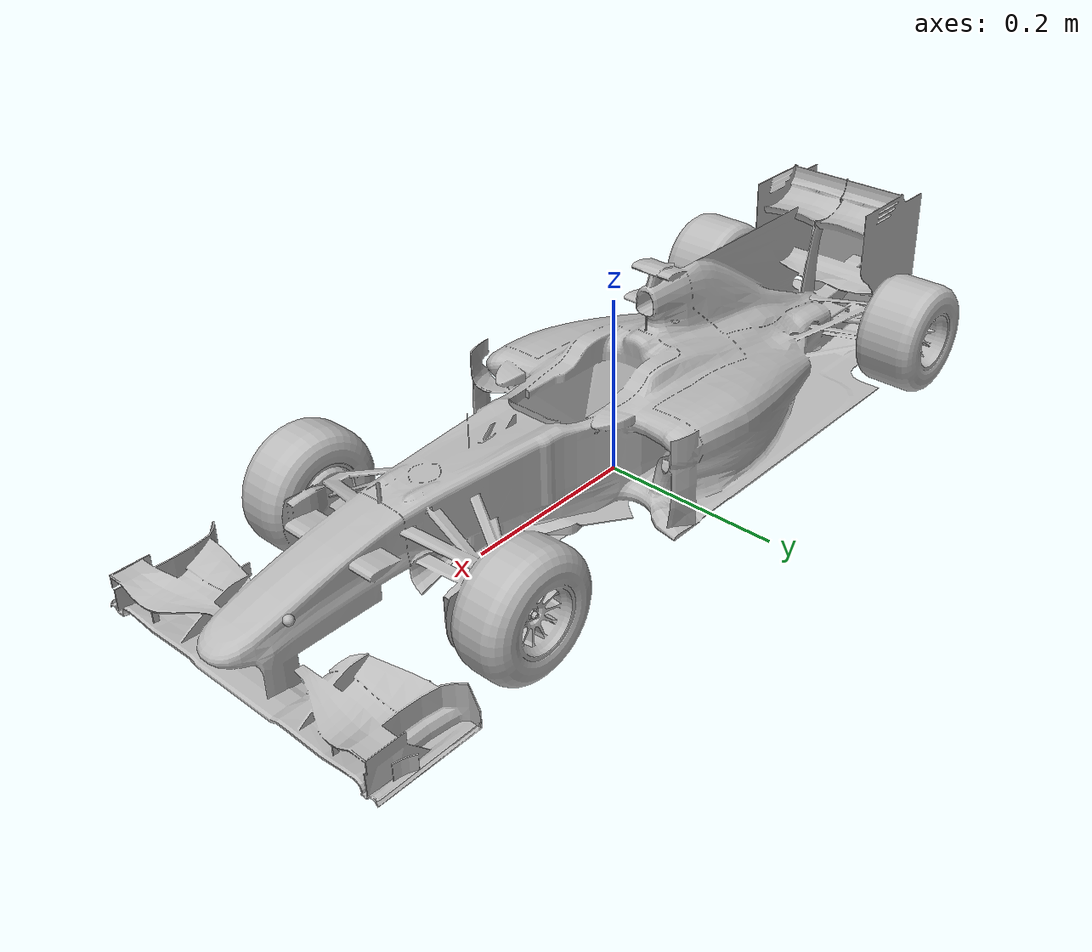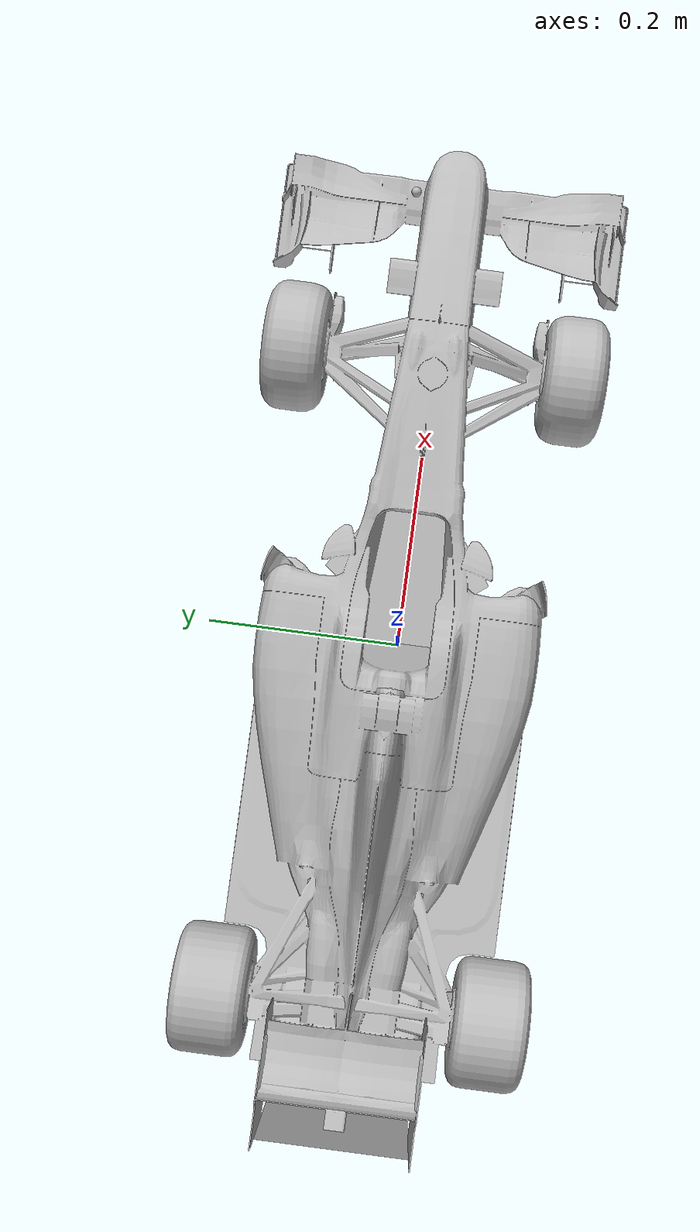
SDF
<?xml version='1.0'?>
<sdf version="1.5">
<model name="f1_renault">
  <pose>0 0 0.0 0 0 0</pose>
  <static>false</static>
    <link name="f1">
    	<pose>0 0 0 0 0 0</pose>
	<inertial>
        <mass>10</mass>
        <inertia>
          <ixx>1</ixx>
          <ixy>0.0</ixy>
          <iyy>1</iyy>
          <ixz>0.0</ixz>
          <iyz>0.0</iyz>
          <izz>1.0</izz>
      </inertia>
    </inertial>
    <collision name="collision">
        <geometry>
            <mesh>
                 <uri>model://f1_renault/Renault/Car.obj</uri>
                 <scale>0.2 0.2 0.2</scale>
            </mesh>
        </geometry>
    </collision>
    <visual name="visual">
        <geometry>
          <mesh>
            <uri>model://f1_renault/Renault/Car.obj</uri>
            <scale>0.2 0.2 0.2</scale>
        </mesh>
      </geometry>
    </visual>
    <visual name='left_cam'>
      <pose>0.45000 0.040000 0.1000000 0.000000 -0.000000 0.0000000</pose>
      <geometry>
        <sphere>
          <radius>.005</radius>
        </sphere>
      </geometry>
    </visual>
    <sensor name='cam_f1_left' type='camera'>
      <pose>0.45000 0.040000 0.1000000 0.000000 -0.000000 0.0000000</pose>
      <update_rate>20.000000</update_rate>
      <camera name='cleft'>
        <horizontal_fov>1.570000</horizontal_fov>
        <image>
          <width>640</width>
          <height>480</height>
          <format>R8G8B8</format>
        </image>
        <clip>
          <near>0.100000</near>
          <far>15.000000</far>
        </clip>
      </camera>
      <plugin name="camera_controller_left" filename="libgazebo_ros_camera.so">
        <alwaysOn>true</alwaysOn>
        <updateRate>0.0</updateRate>
        <cameraName>F1ROS/cameraL</cameraName>
        <imageTopicName>image_raw</imageTopicName>
        <cameraInfoTopicName>camera_info</cameraInfoTopicName>
        <frameName>camera_top_body_left</frameName>
        <hackBaseline>0.07</hackBaseline>
        <distortionK1>0.0</distortionK1>
        <distortionK2>0.0</distortionK2>
        <distortionK3>0.0</distortionK3>
        <distortionT1>0.0</distortionT1>
        <distortionT2>0.0</distortionT2>
      </plugin>
    </sensor>

  </link>

  <plugin name="object_controller" filename="libgazebo_ros_planar_move.so">
      <commandTopic>F1ROS/cmd_vel</commandTopic>
      <odometryTopic>F1ROS/odom</odometryTopic>
      <odometryFrame>odom</odometryFrame>
      <odometryRate>20.0</odometryRate>
      <robotBaseFrame>xf1</robotBaseFrame>
  </plugin>
</model>
</sdf>
